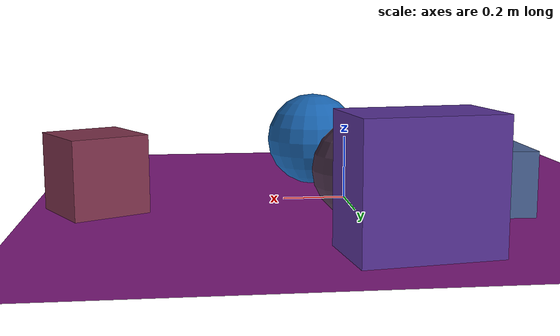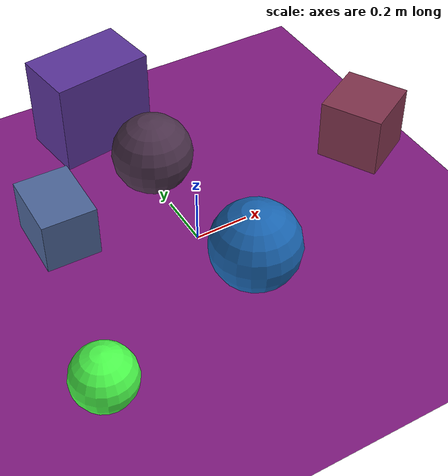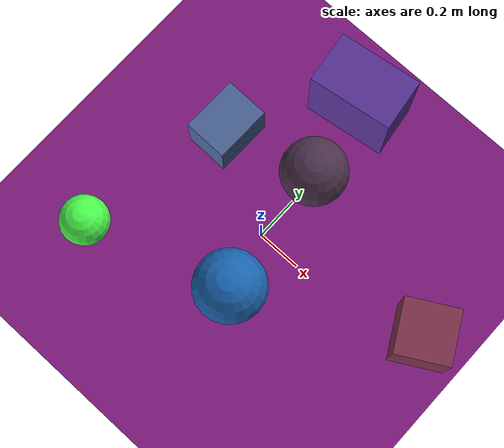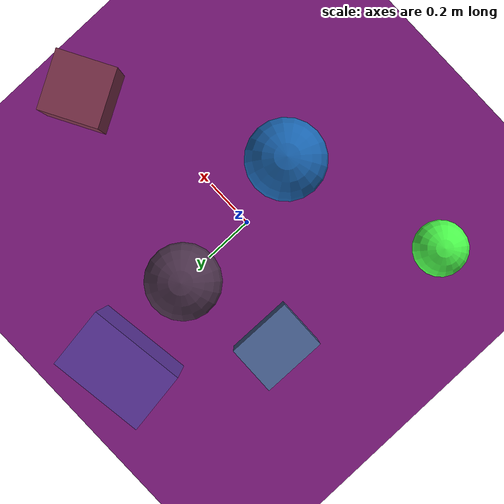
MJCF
<mujoco>
   <asset>
<texture type="skybox" builtin="gradient" rgb1="0.5 0.8 0.7" rgb2="0.9 0.1 0.5" width="256" height="256"/>
<texture name="flat_0" builtin="flat" rgb1="0.1 0.4 0.7" rgb2="0.1 0.4 0.7"  width="200" height="200"/>
<texture name="flat_1" builtin="flat" rgb1="0.3 0.4 0.6" rgb2="0.3 0.4 0.6"  width="200" height="200"/>
<texture name="flat_2" builtin="flat" rgb1="0.5 0.2 0.3" rgb2="0.5 0.2 0.3"  width="200" height="200"/>
<texture name="flat_3" builtin="flat" rgb1="0.3 1.0 0.3" rgb2="0.3 1.0 0.3"  width="200" height="200"/>
<texture name="flat_4" builtin="flat" rgb1="0.3 0.2 0.3" rgb2="0.3 0.2 0.3"  width="200" height="200"/>
<texture name="gradient_5" builtin="gradient" rgb1="0.6 0.2 0.5" rgb2="0.1 0.2 0.7" width="200" height="200"/><material name="flat_0_mat" reflectance="0" texture="flat_0" texuniform="true"/>
<material name="flat_1_mat" reflectance="0" texture="flat_1" texuniform="true"/>
<material name="flat_2_mat" reflectance="0" texture="flat_2" texuniform="true"/>
<material name="flat_3_mat" reflectance="0" texture="flat_3" texuniform="true"/>
<material name="flat_4_mat" reflectance="0" texture="flat_4" texuniform="true"/>
<material name="gradient_5_mat" reflectance="0" texture="gradient_5" texuniform="true"/>
   </asset>

   <worldbody>
      <light diffuse=".9 .9 .9" pos="0 0 3" dir="0 0 -1"/>
     <geom type="plane" size="1 1 0.1" rgba="0.5 0.1 0.5 1"/>
<geom type="sphere" pos="0.07 -0.27 0.16" size="0.16 0.16 0.16" material="flat_0_mat" euler="0 0 17" />
<geom type="box" pos="-0.42 0.24 0.1" size="0.13 0.1 0.1" material="flat_1_mat" euler="0 0 89" />
<geom type="box" pos="0.79 0.12 0.12" size="0.12 0.12 0.12" material="flat_2_mat" euler="0 0 29" />
<geom type="sphere" pos="-0.58 -0.47 0.11" size="0.11 0.11 0.11" material="flat_3_mat" euler="0 0 53" />
<geom type="sphere" pos="0.0 0.33 0.15" size="0.15 0.15 0.15" material="flat_4_mat" euler="0 0 48" />
<geom type="box" pos="-0.07 0.71 0.18" size="0.19 0.12 0.18" material="gradient_5_mat" euler="0 0 8" /><camera euler="60 0 180" fovy="60" name="camera1" pos="-0.2 -1.5 1"></camera>   </worldbody>
</mujoco>
